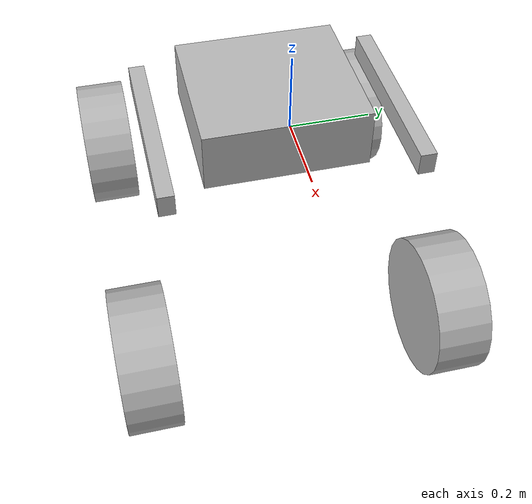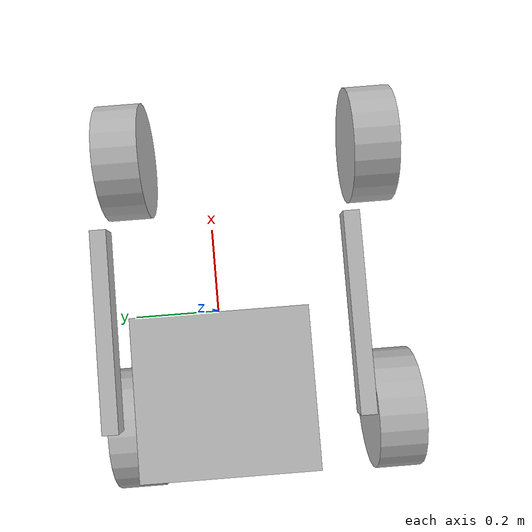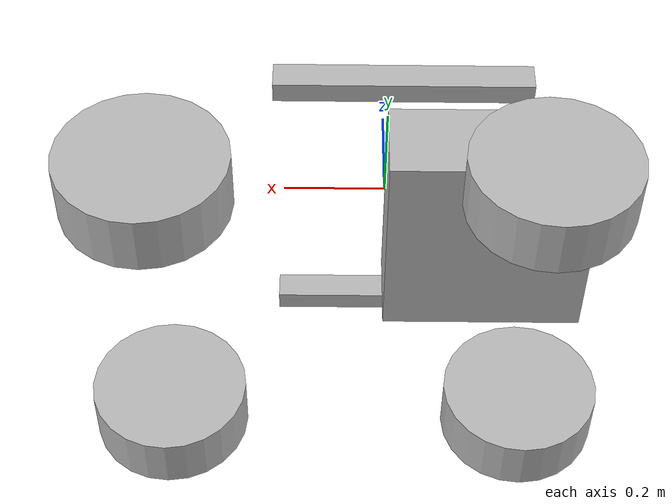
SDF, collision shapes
<?xml version="1.0" ?>
<sdf version="1.8">
    <!-- Body Model -->
    <!--Weight Properties are inaccurate!-->
    <model name='atom_body' canonical_link='Body'>

        <!-- LINKS -->

        <link name='Body'>
            <pose relative_to='__model__'>0 0 0 0 0 0</pose>
            <inertial>
                <mass>1.14395</mass>
                <inertia>
                    <ixx>0.095329</ixx>
                    <ixy>0</ixy>
                    <ixz>0</ixz>
                    <iyy>0.381317</iyy>
                    <iyz>0</iyz>
                    <izz>0.476646</izz>
                </inertia>
            </inertial>
            <visual name='visual'>
                <geometry>
                <mesh>

                    <uri>models/atom/Body/Body.obj</uri>

                </mesh>
                </geometry>
            </visual>

            <collision name='collision'>
                <pose>-0.2 0 -0.0815 0 0 0</pose>
                <geometry>
                    <box>
                        <size>0.4 0.440 0.163</size>
                    </box>
                </geometry>
            </collision>
        </link>

        <link name='RL'>
            <pose relative_to='Body'>0.025 -0.305 0.013 0 0 0</pose>
            <inertial>
                <mass>1.14395</mass>
                <inertia>
                <ixx>0.095329</ixx>
                <ixy>0</ixy>
                <ixz>0</ixz>
                <iyy>0.381317</iyy>
                <iyz>0</iyz>
                <izz>0.476646</izz>
                </inertia>
            </inertial>
            <visual name='visual'>
                <geometry>
                <mesh>

                    <uri>models/atom/Body/RL.obj</uri>

                </mesh>
                </geometry>
            </visual>

            <collision name='A1'>
                <pose>-0.05192 -0.0325 0 0 0 0</pose>
                <geometry>
                    <box>
                        <size>0.487 0.04 0.057</size>
                    </box>
                </geometry>
            </collision>
        </link>

        <link name='LL'>
            <pose relative_to='Body'>0.025 0.305 0.013 0 0 0</pose>
            <inertial>
                <mass>1.14395</mass>
                <inertia>
                <ixx>0.095329</ixx>
                <ixy>0</ixy>
                <ixz>0</ixz>
                <iyy>0.381317</iyy>
                <iyz>0</iyz>
                <izz>0.476646</izz>
                </inertia>
            </inertial>
            <visual name='visual'>
                <geometry>
                <mesh>

                    <uri>models/atom/Body/LL.obj</uri>

                </mesh>
                </geometry>
            </visual>

            <collision name='A1'>
                <pose>-0.05192 -0.0325 0 0 0 0</pose>
                <geometry>
                    <box>
                        <size>0.487 0.04 0.057</size>
                    </box>
                </geometry>
            </collision>
        </link>

        <link name='RFW'>
            <pose relative_to='RL'>0.41717 -0.035 -0.22366 0 0 0</pose>
            <inertial>
                <mass>1.14395</mass>
                <inertia>
                <ixx>0.095329</ixx>
                <ixy>0</ixy>
                <ixz>0</ixz>
                <iyy>0.381317</iyy>
                <iyz>0</iyz>
                <izz>0.476646</izz>
                </inertia>
            </inertial>
            <visual name='visual'>
                <geometry>
                <mesh>

                    <uri>models/atom/Body/Wheel_L.obj</uri>
                    <scale>1 -1 1</scale>

                </mesh>
                </geometry>
            </visual>

            <collision name="Middle">
            <pose>0 -0.098 0 1.5707 0 0</pose>
            <geometry>
                <cylinder>
                <radius>0.16</radius>
                <length>0.12</length>
                </cylinder>
            </geometry>
            </collision>
        </link>

        <link name='RBW'>
            <pose relative_to='RL'>-0.31739 -0.035 -0.22353 0 0 0</pose>
            <inertial>
                <mass>1.14395</mass>
                <inertia>
                <ixx>0.095329</ixx>
                <ixy>0</ixy>
                <ixz>0</ixz>
                <iyy>0.381317</iyy>
                <iyz>0</iyz>
                <izz>0.476646</izz>
                </inertia>
            </inertial>
            <visual name='visual'>
                <geometry>
                <mesh>

                    <uri>models/atom/Body/Wheel_L.obj</uri>
                    <scale>1 -1 1</scale>

                </mesh>
                </geometry>
            </visual>

            <collision name="Middle">
            <pose>0 -0.098 0 1.5707 0 0</pose>
            <geometry>
                <cylinder>
                <radius>0.16</radius>
                <length>0.12</length>
                </cylinder>
            </geometry>
            </collision>
        </link>

        <link name='LBW'>
            <pose relative_to='LL'>-0.31739 0.035 -0.22353 0 0 0</pose>
            <inertial>
                <mass>1.14395</mass>
                <inertia>
                <ixx>0.095329</ixx>
                <ixy>0</ixy>
                <ixz>0</ixz>
                <iyy>0.381317</iyy>
                <iyz>0</iyz>
                <izz>0.476646</izz>
                </inertia>
            </inertial>
            <visual name='visual'>
                <geometry>
                <mesh>

                    <uri>models/atom/Body/Wheel_L.obj</uri>
                    <scale>1 1 1</scale>

                </mesh>
                </geometry>
            </visual>

            <collision name="Middle">
            <pose>0 -0.098 0 1.5707 0 0</pose>
            <geometry>
                <cylinder>
                <radius>0.16</radius>
                <length>0.12</length>
                </cylinder>
            </geometry>
            </collision>
        </link>

        <link name='LFW'>
            <pose relative_to='LL'>0.41739 0.035 -0.22353 0 0 0</pose>
            <inertial>
                <mass>1.14395</mass>
                <inertia>
                <ixx>0.095329</ixx>
                <ixy>0</ixy>
                <ixz>0</ixz>
                <iyy>0.381317</iyy>
                <iyz>0</iyz>
                <izz>0.476646</izz>
                </inertia>
            </inertial>
            <visual name='visual'>
                <geometry>
                <mesh>

                    <uri>models/atom/Body/Wheel_L.obj</uri>
                    <scale>1 1 1</scale>

                </mesh>
                </geometry>
            </visual>

            <collision name="Middle">
            <pose>0 -0.098 0 1.5707 0 0</pose>
            <geometry>
                <cylinder>
                <radius>0.16</radius>
                <length>0.12</length>
                </cylinder>
            </geometry>
            </collision>
        </link>

        <!-- JOINTS -->

        <joint name="Body_LL" type="revolute">
            <parent>Body</parent>
            <child>LL</child>
            <axis>
                <xyz>0 1 0</xyz>
                <limit>
                    <lower>0</lower>
                    <upper>0</upper>
                </limit>
            </axis>
        </joint>

        <joint name="Body_RL" type="revolute">
            <parent>Body</parent>
            <child>RL</child>
            <axis>
                <xyz>0 1 0</xyz>
            </axis>
        </joint>

        <joint name="LL_FW" type="revolute">
            <parent>LL</parent>
            <child>LFW</child>
            <axis>
                <xyz>0 1 0</xyz>
            </axis>
        </joint>
        <joint name="LL_BW" type="revolute">
            <parent>LL</parent>
            <child>LBW</child>
            <axis>
                <xyz>0 1 0</xyz>
            </axis>
        </joint>
        <joint name="RL_FW" type="revolute">
            <parent>RL</parent>
            <child>RFW</child>
            <axis>
                <xyz>0 1 0</xyz>
            </axis>
        </joint>
        <joint name="RL_BW" type="revolute">
            <parent>RL</parent>
            <child>RBW</child>
            <axis>
                <xyz>0 1 0</xyz>
            </axis>
        </joint>

        <!-- SENSORS -->

        <!-- LIDAR -->
        <link name="Lidar_Link">
            <pose relative_to="Body">-0.015 0 -0.115 0 0 0</pose>

            <sensor name='gpu_lidar' type='gpu_lidar'>
                <pose relative_to='Lidar_Link'>0 0 0 0 0 0</pose>
                <topic>lidar</topic>
                <update_rate>10</update_rate>
                <ray>
                    <scan>
                        <horizontal>
                            <samples>640</samples>
                            <resolution>1</resolution>
                            <min_angle>-3.141592653589793</min_angle>
                            <max_angle>3.141592653589793</max_angle>
                        </horizontal>
                        <vertical>
                            <samples>1</samples>
                            <resolution>0.01</resolution>
                            <min_angle>0</min_angle>
                            <max_angle>0</max_angle>
                        </vertical>
                    </scan>
                    <range>
                        <min>0.08</min>
                        <max>10.0</max>
                        <resolution>0.01</resolution>
                    </range>
                </ray>
                <always_on>1</always_on>
                <visualize>true</visualize>
            </sensor>
        </link>
        <joint name="LIDAR_Body" type="fixed">
            <parent>Body</parent>
            <child>Lidar_Link</child>
        </joint>

        <!-- Depth Camera -->
        <link name="depth_camera">
            <pose relative_to="Body">0.2325 0 0.015 0 0 0</pose>

            <sensor name="camera_sensor" type="camera">
                <always_on>true</always_on>
                <update_rate>30</update_rate>
                <visualize>true</visualize>

                <camera>
                <horizontal_fov>1.047</horizontal_fov> <!--60deg-->

                <image>
                    <width>640</width>
                    <height>480</height>
                    <format>R8G8B8</format>
                </image>

                <noise>
                    <type>gaussian</type>
                    <mean>0.0</mean>
                    <stddev>0.01</stddev>
                </noise>

                <clip>
                    <near>0.1</near>
                    <far>100</far>
                </clip>
                </camera>

                <topic>/rover/depth_camera/rgb</topic>
            </sensor>

            <sensor name="depth_sensor" type="depth_camera">
                <always_on>true</always_on>
                <update_rate>30</update_rate>
                <visualize>true</visualize>

                <camera>
                    <horizontal_fov>1.047</horizontal_fov>

                    <image>
                    <width>640</width>
                    <height>480</height>
                    <format>R_FLOAT32</format>
                    </image>

                    <clip>
                    <near>0.1</near>
                    <far>10.0</far>
                    </clip>
                </camera>

                <topic>/rover/depth_camera/depth</topic>
            </sensor>
        </link>
        <joint name="Body_depth" type="fixed">
            <parent>Body</parent>
            <child>depth_camera</child>
        </joint>

        <!-- JOINT CONTROLLERS -->
        <!--Remember to replace values according to true robot-->
        <plugin filename="ignition-gazebo-joint-controller-system"
            name="ignition::gazebo::systems::JointController">
            <joint_name>RL_FW</joint_name>
            <p_gain>20.0</p_gain>     <!-- N·m per rad (approx) -->
            <d_gain>2.0</d_gain>      <!-- N·m·s per rad -->
            <i_gain>0.1</i_gain>      <!-- small integrator -->
            <i_min>-1.0</i_min>       <!-- clamp integral contribution (N·m) -->
            <i_max>1.0</i_max>
            <cmd_min>-1</cmd_min>
            <cmd_max>1</cmd_max>
        </plugin>
        <plugin filename="ignition-gazebo-joint-controller-system"
            name="ignition::gazebo::systems::JointController">
            <joint_name>RL_BW</joint_name>
            <p_gain>20.0</p_gain>
            <d_gain>2.0</d_gain>
            <i_gain>0.1</i_gain>
            <i_min>-1.0</i_min>
            <i_max>1.0</i_max>
            <cmd_min>-1</cmd_min>
            <cmd_max>1</cmd_max>
        </plugin>
        <plugin filename="ignition-gazebo-joint-controller-system"
            name="ignition::gazebo::systems::JointController">
            <joint_name>LL_FW</joint_name>
            <p_gain>20.0</p_gain>
            <d_gain>2.0</d_gain>
            <i_gain>0.1</i_gain>
            <i_min>-1.0</i_min>
            <i_max>1.0</i_max>
            <cmd_min>-1</cmd_min>
            <cmd_max>1</cmd_max>
            </plugin>
        <plugin filename="ignition-gazebo-joint-controller-system"
            name="ignition::gazebo::systems::JointController">
            <joint_name>LL_BW</joint_name>
            <p_gain>20.0</p_gain>
            <d_gain>2.0</d_gain>
            <i_gain>0.1</i_gain>
            <i_min>-1.0</i_min>
            <i_max>1.0</i_max>
            <cmd_min>-1</cmd_min>
            <cmd_max>1</cmd_max>
        </plugin>

        <!-- Below plugins keep the relation between rocker(differential) and legs intact -->

        <plugin filename="ignition-gazebo-joint-controller-system"
            name="ignition::gazebo::systems::JointController">
            <joint_name>Body_LL</joint_name>
            <p_gain>20.0</p_gain>     <!-- N·m per rad (approx) -->
            <d_gain>2.0</d_gain>      <!-- N·m·s per rad -->
            <i_gain>0.1</i_gain>      <!-- small integrator -->
            <i_min>-1.0</i_min>       <!-- clamp integral contribution (N·m) -->
            <i_max>1.0</i_max>
            <cmd_min>-1</cmd_min>
            <cmd_max>1</cmd_max>
        </plugin>

        <plugin filename="ignition-gazebo-joint-controller-system"
            name="ignition::gazebo::systems::JointController">
            <joint_name>Body_RL</joint_name>
            <p_gain>20.0</p_gain>     <!-- N·m per rad (approx) -->
            <d_gain>2.0</d_gain>      <!-- N·m·s per rad -->
            <i_gain>0.1</i_gain>      <!-- small integrator -->
            <i_min>-1.0</i_min>       <!-- clamp integral contribution (N·m) -->
            <i_max>1.0</i_max>
            <cmd_min>-1</cmd_min>
            <cmd_max>1</cmd_max>
        </plugin>
    </model>
</sdf>
